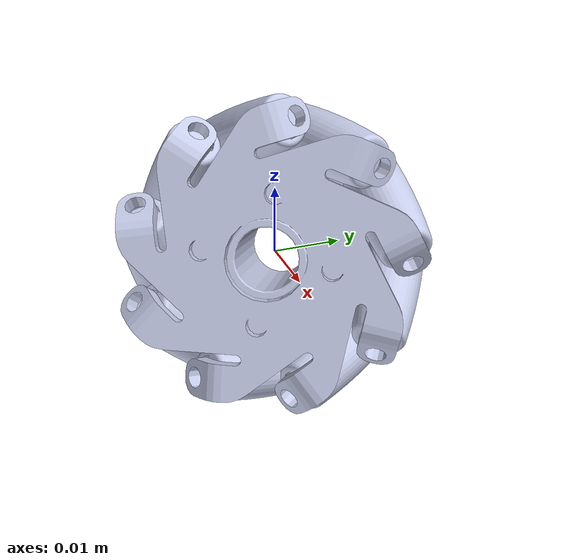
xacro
<?xml version="1.0" encoding="utf-8"?>
<robot
  name="Mecanum-Right">
  <link
    name="Right_Base_Link">
    <inertial>
      <origin
        xyz="-4.7771233839358E-07 2.34552518933002E-07 -2.07119508697187E-07"
        rpy="0 0 0" />
      <mass
        value="0.0110925597603562" />
      <inertia
        ixx="1.26410691718137E-06"
        ixy="-1.5460162528858E-07"
        ixz="1.36519585539842E-07"
        iyy="1.02513832514045E-06"
        iyz="-6.70299050271453E-08"
        izz="1.00842045851304E-06" />
    </inertial>
    <visual>
      <origin
        xyz="0 0 0"
        rpy="0 0 0" />
      <geometry>
        <mesh
          filename="file://$(find icarus_pi)/Mesh/Mecanum-Right/meshes/Right_Base_Link.STL" />
      </geometry>
      <material
        name="">
        <color
          rgba="0.792156862745098 0.819607843137255 0.933333333333333 1" />
      </material>
    </visual>
    <collision>
      <origin
        xyz="0 0 0"
        rpy="0 0 0" />
      <geometry>
        <mesh
          filename="file://$(find icarus_pi)/Mesh/Mecanum-Right/meshes/Right_Base_Link.STL" />
      </geometry>
    </collision>
  </link>
  <link
    name="Mecanum_Roller_Link1">
    <inertial>
      <origin
        xyz="-4.16595979552251E-05 0 1.56125112837913E-17"
        rpy="0 0 0" />
      <mass
        value="0.00104310145784987" />
      <inertia
        ixx="9.96758957260102E-09"
        ixy="2.95006210648795E-24"
        ixz="2.48154183765908E-24"
        iyy="3.79225492604175E-08"
        iyz="-1.60266243682149E-24"
        izz="3.79225492604175E-08" />
    </inertial>
    <visual>
      <origin
        xyz="0 0 0"
        rpy="0 0 0" />
      <geometry>
        <mesh
          filename="file://$(find icarus_pi)/Mesh/Mecanum-Right/meshes/Mecanum_Roller_Link1.STL" />
      </geometry>
      <material
        name="">
        <color
          rgba="0.792156862745098 0.819607843137255 0.933333333333333 1" />
      </material>
    </visual>
    <collision>
      <origin
        xyz="0 0 0"
        rpy="0 0 0" />
      <geometry>
        <mesh
          filename="file://$(find icarus_pi)/Mesh/Mecanum-Right/meshes/Mecanum_Roller_Link1.STL" />
      </geometry>
    </collision>
  </link>
  <joint
    name="Mecanum_Roller_Joint_1"
    type="continuous">
    <origin
      xyz="-0.00786276516006295 -0.00229210366796707 0.0151828566548909"
      rpy="-1.36068806852681 0.491674447872911 -2.73783219400761" />
    <parent
      link="Right_Base_Link" />
    <child
      link="Mecanum_Roller_Link1" />
    <axis
      xyz="1 0 0" />
  </joint>
  <link
    name="Mecanum_Roller_Link2">
    <inertial>
      <origin
        xyz="-4.19537259518619E-05 5.55111512312578E-17 4.5102810375397E-17"
        rpy="0 0 0" />
      <mass
        value="0.00104310145784987" />
      <inertia
        ixx="9.96758957260102E-09"
        ixy="4.13590306276514E-25"
        ixz="8.27180612553028E-25"
        iyy="3.79225492604175E-08"
        iyz="0"
        izz="3.79225492604175E-08" />
    </inertial>
    <visual>
      <origin
        xyz="0 0 0"
        rpy="0 0 0" />
      <geometry>
        <mesh
          filename="file://$(find icarus_pi)/Mesh/Mecanum-Right/meshes/Mecanum_Roller_Link2.STL" />
      </geometry>
      <material
        name="">
        <color
          rgba="0.792156862745098 0.819607843137255 0.933333333333333 1" />
      </material>
    </visual>
    <collision>
      <origin
        xyz="0 0 0"
        rpy="0 0 0" />
      <geometry>
        <mesh
          filename="file://$(find icarus_pi)/Mesh/Mecanum-Right/meshes/Mecanum_Roller_Link2.STL" />
      </geometry>
    </collision>
  </link>
  <joint
    name="Mecanum_Roller_Joint_2"
    type="continuous">
    <origin
      xyz="-0.00257449912034201 0.00825350947765706 0.0149280771357719"
      rpy="1.93542758330994 -0.0214038442701011 0.265392618762669" />
    <parent
      link="Right_Base_Link" />
    <child
      link="Mecanum_Roller_Link2" />
    <axis
      xyz="1 0 0" />
  </joint>
  <link
    name="Mecanum_Roller_Link3">
    <inertial>
      <origin
        xyz="-4.16595979550827E-05 -1.73472347597681E-18 -1.73472347597681E-18"
        rpy="0 0 0" />
      <mass
        value="0.00104310145784987" />
      <inertia
        ixx="9.96758957260103E-09"
        ixy="1.88700577238659E-24"
        ixz="4.44609579247252E-24"
        iyy="3.79225492604175E-08"
        iyz="-4.13590306276514E-25"
        izz="3.79225492604175E-08" />
    </inertial>
    <visual>
      <origin
        xyz="0 0 0"
        rpy="0 0 0" />
      <geometry>
        <mesh
          filename="file://$(find icarus_pi)/Mesh/Mecanum-Right/meshes/Mecanum_Roller_Link3.STL" />
      </geometry>
      <material
        name="">
        <color
          rgba="0.792156862745098 0.819607843137255 0.933333333333333 1" />
      </material>
    </visual>
    <collision>
      <origin
        xyz="0 0 0"
        rpy="0 0 0" />
      <geometry>
        <mesh
          filename="file://$(find icarus_pi)/Mesh/Mecanum-Right/meshes/Mecanum_Roller_Link3.STL" />
      </geometry>
    </collision>
  </link>
  <joint
    name="Mecanum_Roller_Joint_3"
    type="continuous">
    <origin
      xyz="0.0038677825728569 0.0149620683207087 0.00766633686486059"
      rpy="-1.45997240902279 -0.325004631734415 3.05656776956051" />
    <parent
      link="Right_Base_Link" />
    <child
      link="Mecanum_Roller_Link3" />
    <axis
      xyz="1 0 0" />
  </joint>
  <link
    name="Mecanum_Roller_Link4">
    <inertial>
      <origin
        xyz="4.16595979567443E-05 0 -1.73472347597681E-18"
        rpy="0 0 0" />
      <mass
        value="0.00104310145784984" />
      <inertia
        ixx="9.96758957238032E-09"
        ixy="-2.06795153138257E-24"
        ixz="-5.58346913473294E-24"
        iyy="3.79225492603072E-08"
        iyz="-4.96308367531817E-24"
        izz="3.79225492603072E-08" />
    </inertial>
    <visual>
      <origin
        xyz="0 0 0"
        rpy="0 0 0" />
      <geometry>
        <mesh
          filename="file://$(find icarus_pi)/Mesh/Mecanum-Right/meshes/Mecanum_Roller_Link4.STL" />
      </geometry>
      <material
        name="">
        <color
          rgba="0.792156862745098 0.819607843137255 0.933333333333333 1" />
      </material>
    </visual>
    <collision>
      <origin
        xyz="0 0 0"
        rpy="0 0 0" />
      <geometry>
        <mesh
          filename="file://$(find icarus_pi)/Mesh/Mecanum-Right/meshes/Mecanum_Roller_Link4.STL" />
      </geometry>
    </collision>
  </link>
  <joint
    name="Mecanum_Roller_Joint_4"
    type="continuous">
    <origin
      xyz="0.00844966471730028 0.0146945636211975 -0.00320451517983013"
      rpy="-1.23509707840396 0.401303910502291 -0.602154738197085" />
    <parent
      link="Right_Base_Link" />
    <child
      link="Mecanum_Roller_Link4" />
    <axis
      xyz="1 0 0" />
  </joint>
  <link
    name="Mecanum_Roller_Link5">
    <inertial>
      <origin
        xyz="4.16595979569898E-05 3.64291929955129E-17 -1.38777878078145E-17"
        rpy="0 0 0" />
      <mass
        value="0.0010431014578499" />
      <inertia
        ixx="9.96758957260262E-09"
        ixy="2.06795153138257E-25"
        ixz="2.06795153138257E-24"
        iyy="3.79225492604183E-08"
        iyz="2.06795153138257E-24"
        izz="3.79225492604183E-08" />
    </inertial>
    <visual>
      <origin
        xyz="0 0 0"
        rpy="0 0 0" />
      <geometry>
        <mesh
          filename="file://$(find icarus_pi)/Mesh/Mecanum-Right/meshes/Mecanum_Roller_Link5.STL" />
      </geometry>
      <material
        name="">
        <color
          rgba="0.792156862745098 0.819607843137255 0.933333333333333 1" />
      </material>
    </visual>
    <collision>
      <origin
        xyz="0 0 0"
        rpy="0 0 0" />
      <geometry>
        <mesh
          filename="file://$(find icarus_pi)/Mesh/Mecanum-Right/meshes/Mecanum_Roller_Link5.STL" />
      </geometry>
    </collision>
  </link>
  <joint
    name="Mecanum_Roller_Joint_5"
    type="continuous">
    <origin
      xyz="0.00902723373565527 0.0075761638010083 -0.0125978865105267"
      rpy="1.01038415879456 0.159830081855345 -1.04575970415485" />
    <parent
      link="Right_Base_Link" />
    <child
      link="Mecanum_Roller_Link5" />
    <axis
      xyz="1 0 0" />
  </joint>
  <link
    name="Mecanum_Roller_Link6">
    <inertial>
      <origin
        xyz="4.16595979573133E-05 -6.93889390390723E-18 1.73472347597681E-18"
        rpy="0 0 0" />
      <mass
        value="0.00104310145784987" />
      <inertia
        ixx="9.96758957260103E-09"
        ixy="1.75775880167518E-24"
        ixz="2.8951321439356E-24"
        iyy="3.79225492604175E-08"
        iyz="2.99852972050473E-24"
        izz="3.79225492604175E-08" />
    </inertial>
    <visual>
      <origin
        xyz="0 0 0"
        rpy="0 0 0" />
      <geometry>
        <mesh
          filename="file://$(find icarus_pi)/Mesh/Mecanum-Right/meshes/Mecanum_Roller_Link6.STL" />
      </geometry>
      <material
        name="">
        <color
          rgba="0.792156862745098 0.819607843137255 0.933333333333333 1" />
      </material>
    </visual>
    <collision>
      <origin
        xyz="0 0 0"
        rpy="0 0 0" />
      <geometry>
        <mesh
          filename="file://$(find icarus_pi)/Mesh/Mecanum-Right/meshes/Mecanum_Roller_Link6.STL" />
      </geometry>
    </collision>
  </link>
  <joint
    name="Mecanum_Roller_Joint_6"
    type="continuous">
    <origin
      xyz="0.00533023866526893 -0.00306235275179063 -0.0161185142859026"
      rpy="-1.00833638122774 -0.270056335980709 -1.28003202448786" />
    <parent
      link="Right_Base_Link" />
    <child
      link="Mecanum_Roller_Link6" />
    <axis
      xyz="1 0 0" />
  </joint>
  <link
    name="Mecanum_Roller_Link7">
    <inertial>
      <origin
        xyz="4.19537259526218E-05 2.94902990916057E-17 1.38777878078145E-17"
        rpy="0 0 0" />
      <mass
        value="0.00104310145784982" />
      <inertia
        ixx="9.967589571584E-09"
        ixy="1.55096364853693E-24"
        ixz="-5.37667398159468E-24"
        iyy="3.79225492598888E-08"
        iyz="-1.24077091882954E-24"
        izz="3.79225492598888E-08" />
    </inertial>
    <visual>
      <origin
        xyz="0 0 0"
        rpy="0 0 0" />
      <geometry>
        <mesh
          filename="file://$(find icarus_pi)/Mesh/Mecanum-Right/meshes/Mecanum_Roller_Link7.STL" />
      </geometry>
      <material
        name="">
        <color
          rgba="0.792156862745098 0.819607843137255 0.933333333333333 1" />
      </material>
    </visual>
    <collision>
      <origin
        xyz="0 0 0"
        rpy="0 0 0" />
      <geometry>
        <mesh
          filename="file://$(find icarus_pi)/Mesh/Mecanum-Right/meshes/Mecanum_Roller_Link7.STL" />
      </geometry>
    </collision>
  </link>
  <joint
    name="Mecanum_Roller_Joint_7"
    type="continuous">
    <origin
      xyz="-0.000911455412901512 -0.0122431059082033 -0.0121190576424399"
      rpy="0.755293558147071 0.758576984655219 1.85745610617137" />
    <parent
      link="Right_Base_Link" />
    <child
      link="Mecanum_Roller_Link7" />
    <axis
      xyz="1 0 0" />
  </joint>
  <link
    name="Mecanum_Roller_Link8">
    <inertial>
      <origin
        xyz="-4.19537259514699E-05 1.38777878078145E-17 -1.21430643318376E-17"
        rpy="0 0 0" />
      <mass
        value="0.00104310145784987" />
      <inertia
        ixx="9.96758957260103E-09"
        ixy="-1.55096364853693E-24"
        ixz="-2.06795153138257E-25"
        iyy="3.79225492604175E-08"
        iyz="-3.30872245021211E-24"
        izz="3.79225492604175E-08" />
    </inertial>
    <visual>
      <origin
        xyz="0 0 0"
        rpy="0 0 0" />
      <geometry>
        <mesh
          filename="file://$(find icarus_pi)/Mesh/Mecanum-Right/meshes/Mecanum_Roller_Link8.STL" />
      </geometry>
      <material
        name="">
        <color
          rgba="0.792156862745098 0.819607843137255 0.933333333333333 1" />
      </material>
    </visual>
    <collision>
      <origin
        xyz="0 0 0"
        rpy="0 0 0" />
      <geometry>
        <mesh
          filename="file://$(find icarus_pi)/Mesh/Mecanum-Right/meshes/Mecanum_Roller_Link8.STL" />
      </geometry>
    </collision>
  </link>
  <joint
    name="Mecanum_Roller_Joint_8"
    type="continuous">
    <origin
      xyz="-0.00677729047097743 -0.0156703192336383 -0.00247090679262434"
      rpy="2.95463100680286 -1.13639269714102 -0.725426795925048" />
    <parent
      link="Right_Base_Link" />
    <child
      link="Mecanum_Roller_Link8" />
    <axis
      xyz="1 0 0" />
  </joint>
  <link
    name="Mecanum_Roller_Link9">
    <inertial>
      <origin
        xyz="-4.16595979555983E-05 -5.20417042793042E-18 6.93889390390723E-18"
        rpy="0 0 0" />
      <mass
        value="0.00104310145784987" />
      <inertia
        ixx="9.96758957260103E-09"
        ixy="1.24077091882954E-24"
        ixz="4.66581564268192E-24"
        iyy="3.79225492604175E-08"
        iyz="4.13590306276514E-25"
        izz="3.79225492604175E-08" />
    </inertial>
    <visual>
      <origin
        xyz="0 0 0"
        rpy="0 0 0" />
      <geometry>
        <mesh
          filename="file://$(find icarus_pi)/Mesh/Mecanum-Right/meshes/Mecanum_Roller_Link9.STL" />
      </geometry>
      <material
        name="">
        <color
          rgba="0.792156862745098 0.819607843137255 0.933333333333333 1" />
      </material>
    </visual>
    <collision>
      <origin
        xyz="0 0 0"
        rpy="0 0 0" />
      <geometry>
        <mesh
          filename="file://$(find icarus_pi)/Mesh/Mecanum-Right/meshes/Mecanum_Roller_Link9.STL" />
      </geometry>
    </collision>
  </link>
  <joint
    name="Mecanum_Roller_Joint_9"
    type="continuous">
    <origin
      xyz="-0.00952257709379006 -0.011740361523891 0.00831146125366275"
      rpy="0.326455693966909 0.964739218565908 -2.90683123969866" />
    <parent
      link="Right_Base_Link" />
    <child
      link="Mecanum_Roller_Link9" />
    <axis
      xyz="1 0 0" />
  </joint>

    <ros2_control name="gazeboSimSystem" type="system">
		<hardware>
			<plugin>gazebo_ros2_control/GazeboSystem</plugin>
		</hardware>

		<joint name="Mecanum_roller_joint_1">
			<command_interface name="velocity">
				<param name="min">-100</param>
				<param name="max">100</param>
			</command_interface>
			<state_interface name="position"/>
			<state_interface name="velocity"/>
		</joint>

		<joint name="Mecanum_roller_joint_2">
			<command_interface name="velocity">
				<param name="min">-100</param>
				<param name="max">100</param>
			</command_interface>
			<state_interface name="position"/>
			<state_interface name="velocity"/>
		</joint>

    		<joint name="Mecanum_roller_joint_3">
			<command_interface name="velocity">
				<param name="min">-100</param>
				<param name="max">100</param>
			</command_interface>
			<state_interface name="position"/>
			<state_interface name="velocity"/>
		</joint>

    		<joint name="Mecanum_roller_joint_4">
			<command_interface name="velocity">
				<param name="min">-100</param>
				<param name="max">100</param>
			</command_interface>
			<state_interface name="position"/>
			<state_interface name="velocity"/>
		</joint>

    		<joint name="Mecanum_roller_joint_5">
			<command_interface name="velocity">
				<param name="min">-100</param>
				<param name="max">100</param>
			</command_interface>
			<state_interface name="position"/>
			<state_interface name="velocity"/>
		</joint>

    		<joint name="Mecanum_roller_joint_6">
			<command_interface name="velocity">
				<param name="min">-100</param>
				<param name="max">100</param>
			</command_interface>
			<state_interface name="position"/>
			<state_interface name="velocity"/>
		</joint>

    		<joint name="Mecanum_roller_joint_7">
			<command_interface name="velocity">
				<param name="min">-100</param>
				<param name="max">100</param>
			</command_interface>
			<state_interface name="position"/>
			<state_interface name="velocity"/>
		</joint>

    		<joint name="Mecanum_roller_joint_8">
			<command_interface name="velocity">
				<param name="min">-100</param>
				<param name="max">100</param>
			</command_interface>
			<state_interface name="position"/>
			<state_interface name="velocity"/>
		</joint>

    		<joint name="Mecanum_roller_joint_9">
			<command_interface name="velocity">
				<param name="min">-100</param>
				<param name="max">100</param>
			</command_interface>
			<state_interface name="position"/>
			<state_interface name="velocity"/>
		</joint>
	</ros2_control>

  	<gazebo>
		<plugin filename="libgazebo_ros2_control.so" name="gazebo_ros2_control">
			<parameters>$(find icarus_pi)/config/controllers.yaml</parameters>
			<robot_param>robot_description</robot_param>
			<robot_param_node>robot_state_publisher</robot_param_node>
			<controller_manager_name>icarus_controller_manager</controller_manager_name>
		</plugin>
	</gazebo>

</robot>
